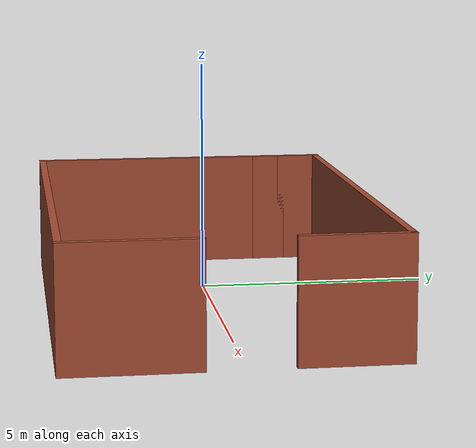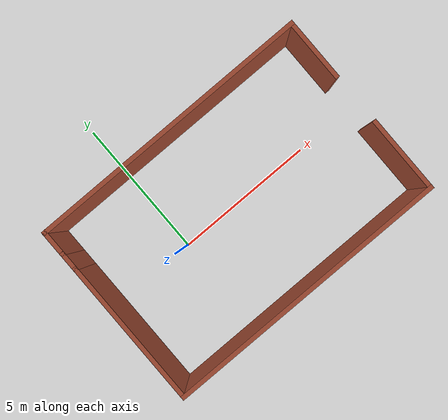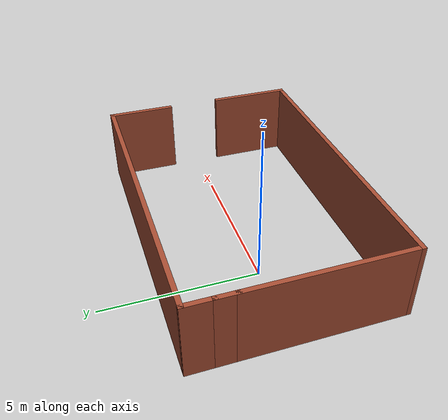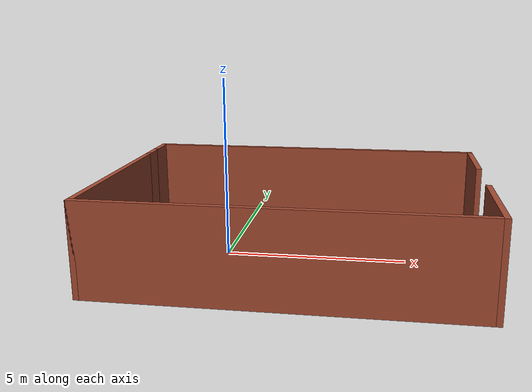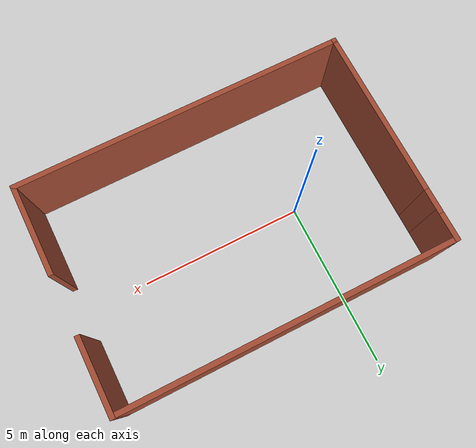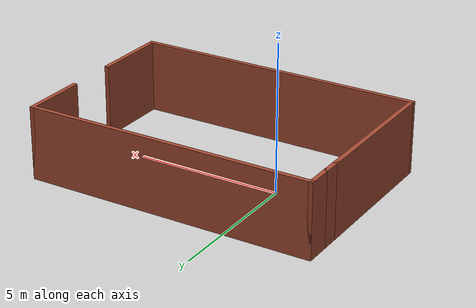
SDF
<?xml version='1.0'?>
<sdf version='1.7'>
  <model name='my_world_to_roomba'>
    <pose>2.045 -0.185 0 0 -0 0</pose>
    <link name='Wall_0'>
      <collision name='Wall_0_Collision'>
        <geometry>
          <box>
            <size>10 0.15 2.5</size>
          </box>
        </geometry>
        <pose>0 0 1.25 0 -0 0</pose>
      </collision>
      <visual name='Wall_0_Visual'>
        <pose>0 0 1.25 0 -0 0</pose>
        <geometry>
          <box>
            <size>10 0.15 2.5</size>
          </box>
        </geometry>
        <material>
          <script>
            <uri>file://media/materials/scripts/gazebo.material</uri>
            <name>Gazebo/Bricks</name>
          </script>
          <ambient>1 1 1 1</ambient>
        </material>
        <meta>
          <layer>0</layer>
        </meta>
      </visual>
      <pose>0 -3.275 0 0 -0 0</pose>
    </link>
    <link name='Wall_1'>
      <collision name='Wall_1_Collision'>
        <geometry>
          <box>
            <size>2.75 0.15 2.5</size>
          </box>
        </geometry>
        <pose>0 0 1.25 0 -0 0</pose>
      </collision>
      <visual name='Wall_1_Visual'>
        <pose>0 0 1.25 0 -0 0</pose>
        <geometry>
          <box>
            <size>2.75 0.15 2.5</size>
          </box>
        </geometry>
        <material>
          <script>
            <uri>file://media/materials/scripts/gazebo.material</uri>
            <name>Gazebo/Bricks</name>
          </script>
          <ambient>1 1 1 1</ambient>
        </material>
        <meta>
          <layer>0</layer>
        </meta>
      </visual>
      <pose>4.925 -1.975 0 0 -0 1.5708</pose>
    </link>
    <link name='Wall_4'>
      <collision name='Wall_4_Collision'>
        <geometry>
          <box>
            <size>5.25 0.15 2.5</size>
          </box>
        </geometry>
        <pose>0 0 1.25 0 -0 0</pose>
      </collision>
      <visual name='Wall_4_Visual'>
        <pose>0 0 1.25 0 -0 0</pose>
        <geometry>
          <box>
            <size>5.25 0.15 2.5</size>
          </box>
        </geometry>
        <material>
          <script>
            <uri>file://media/materials/scripts/gazebo.material</uri>
            <name>Gazebo/Bricks</name>
          </script>
          <ambient>1 1 1 1</ambient>
        </material>
        <meta>
          <layer>0</layer>
        </meta>
      </visual>
      <pose>-4.925 -0.725 0 0 -0 1.5708</pose>
    </link>
    <link name='Wall_5'>
      <collision name='Wall_5_Collision'>
        <geometry>
          <box>
            <size>0.75 0.15 2.5</size>
          </box>
        </geometry>
        <pose>0 0 1.25 0 -0 0</pose>
      </collision>
      <visual name='Wall_5_Visual'>
        <pose>0 0 1.25 0 -0 0</pose>
        <geometry>
          <box>
            <size>0.75 0.15 2.5</size>
          </box>
        </geometry>
        <material>
          <script>
            <uri>file://media/materials/scripts/gazebo.material</uri>
            <name>Gazebo/Bricks</name>
          </script>
          <ambient>1 1 1 1</ambient>
        </material>
        <meta>
          <layer>0</layer>
        </meta>
      </visual>
      <pose>-4.925 2.125 0 0 -0 1.5708</pose>
    </link>
    <link name='Wall_6'>
      <collision name='Wall_6_Collision'>
        <geometry>
          <box>
            <size>1 0.15 2.5</size>
          </box>
        </geometry>
        <pose>0 0 1.25 0 -0 0</pose>
      </collision>
      <visual name='Wall_6_Visual'>
        <pose>0 0 1.25 0 -0 0</pose>
        <geometry>
          <box>
            <size>1 0.15 2.5</size>
          </box>
        </geometry>
        <material>
          <script>
            <uri>file://media/materials/scripts/gazebo.material</uri>
            <name>Gazebo/Bricks</name>
          </script>
          <ambient>1 1 1 1</ambient>
        </material>
        <meta>
          <layer>0</layer>
        </meta>
      </visual>
      <pose>-4.925 2.85 0 0 -0 1.5708</pose>
    </link>
    <link name='Wall_7'>
      <collision name='Wall_7_Collision'>
        <geometry>
          <box>
            <size>10 0.15 2.5</size>
          </box>
        </geometry>
        <pose>0 0 1.25 0 -0 0</pose>
      </collision>
      <visual name='Wall_7_Visual'>
        <pose>0 0 1.25 0 -0 0</pose>
        <geometry>
          <box>
            <size>10 0.15 2.5</size>
          </box>
        </geometry>
        <material>
          <script>
            <uri>file://media/materials/scripts/gazebo.material</uri>
            <name>Gazebo/Bricks</name>
          </script>
          <ambient>1 1 1 1</ambient>
        </material>
        <meta>
          <layer>0</layer>
        </meta>
      </visual>
      <pose>0 3.275 0 0 -0 0</pose>
    </link>
    <link name='Wall_8'>
      <collision name='Wall_8_Collision'>
        <geometry>
          <box>
            <size>2.25 0.15 2.5</size>
          </box>
        </geometry>
        <pose>0 0 1.25 0 -0 0</pose>
      </collision>
      <visual name='Wall_8_Visual'>
        <pose>0 0 1.25 0 -0 0</pose>
        <geometry>
          <box>
            <size>2.25 0.15 2.5</size>
          </box>
        </geometry>
        <material>
          <script>
            <uri>file://media/materials/scripts/gazebo.material</uri>
            <name>Gazebo/Bricks</name>
          </script>
          <ambient>1 1 1 1</ambient>
        </material>
        <meta>
          <layer>0</layer>
        </meta>
      </visual>
      <pose>4.925 2.225 0 0 -0 -1.5708</pose>
    </link>
    <static>1</static>
  </model>
</sdf>
